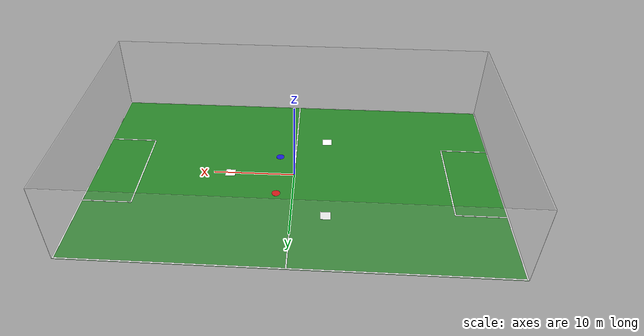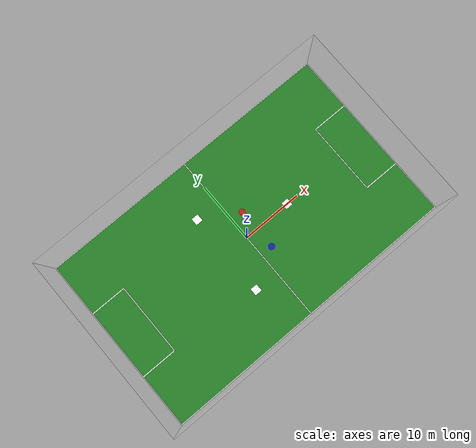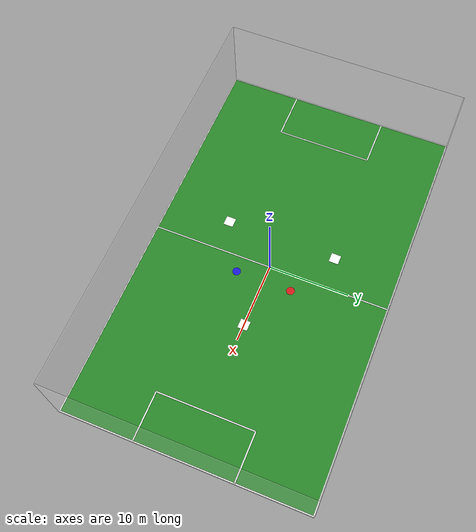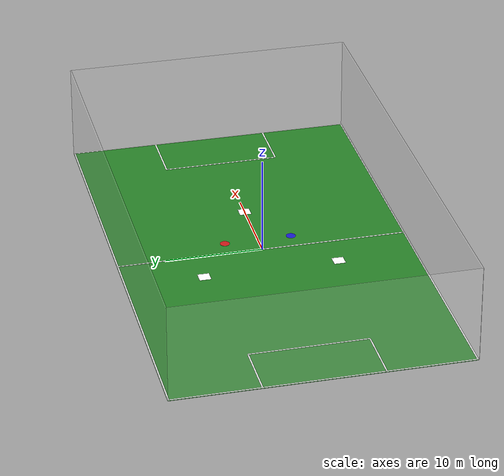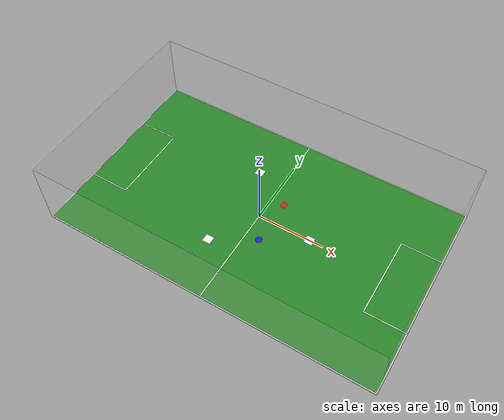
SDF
<?xml version="1.0" ?>
<sdf version="1.9">
  <world name="task1_dynamic_swarm">

    <plugin filename="gz-sim-physics-system" name="gz::sim::systems::Physics"></plugin>
    <plugin filename="gz-sim-scene-broadcaster-system" name="gz::sim::systems::SceneBroadcaster"></plugin>
    <plugin filename="gz-sim-user-commands-system" name="gz::sim::systems::UserCommands"></plugin>

    <plugin filename="gz-sim-sensors-system" name="gz::sim::systems::Sensors">
      <render_engine>ogre2</render_engine>
    </plugin>
    <plugin filename="gz-sim-imu-system" name="gz::sim::systems::Imu"></plugin>
    <plugin filename="gz-sim-air-pressure-system" name="gz::sim::systems::AirPressure"></plugin>
    <plugin filename="gz-sim-air-speed-system" name="gz::sim::systems::AirSpeed"></plugin>
    <plugin filename="gz-sim-navsat-system" name="gz::sim::systems::NavSat"></plugin>
    <plugin filename="gz-sim-magnetometer-system" name="gz::sim::systems::Magnetometer"></plugin>
    <physics type="ode">
      <max_step_size>0.004</max_step_size>
      <real_time_factor>1.0</real_time_factor>
      <real_time_update_rate>250</real_time_update_rate>
    </physics>
    <gravity>0 0 -9.8</gravity>
    <magnetic_field>6e-06 2.3e-05 -4.2e-05</magnetic_field>
    <atmosphere type="adiabatic"/>

    <spherical_coordinates>
      <surface_model>EARTH_WGS84</surface_model>
      <world_frame_orientation>ENU</world_frame_orientation>
      <latitude_deg>47.397971057728974</latitude_deg>
      <longitude_deg>8.546163739800146</longitude_deg>
      <elevation>0</elevation>
    </spherical_coordinates>

    <scene>
      <ambient>1.0 1.0 1.0 1.0</ambient>
      <background>0.5 0.8 0.95 1</background>
      <shadows>false</shadows>
    </scene>

    <light type="directional" name="sun">
      <cast_shadows>false</cast_shadows>
      <pose>0 0 20 0 0 0</pose>
      <diffuse>1.0 1.0 1.0 1</diffuse>
      <specular>0.5 0.5 0.5 1</specular>
      <direction>0 0 -1</direction>
    </light>

    <model name="football_field">
      <static>true</static>
      <link name="link">

        <collision name="collision">
          <geometry><plane><normal>0 0 1</normal><size>50 30</size></plane></geometry>
        </collision>
        <visual name="field_visual">
          <geometry><plane><normal>0 0 1</normal><size>50 30</size></plane></geometry>
          <material>
            <ambient>0.15 0.5 0.15 1</ambient>
            <diffuse>0.15 0.5 0.15 1</diffuse>
            <specular>0.1 0.1 0.1 1</specular>
          </material>
        </visual>

        <visual name="line_center">
          <pose>0 0 0.01 0 0 0</pose>
          <geometry><box><size>0.15 30 0.01</size></box></geometry>
          <material><ambient>1 1 1 1</ambient><diffuse>1 1 1 1</diffuse></material>
        </visual>

        <visual name="line_top">
          <pose>0 14.925 0.01 0 0 0</pose>
          <geometry><box><size>50 0.15 0.01</size></box></geometry>
          <material><ambient>1 1 1 1</ambient><diffuse>1 1 1 1</diffuse></material>
        </visual>
        <visual name="line_bottom">
          <pose>0 -14.925 0.01 0 0 0</pose>
          <geometry><box><size>50 0.15 0.01</size></box></geometry>
          <material><ambient>1 1 1 1</ambient><diffuse>1 1 1 1</diffuse></material>
        </visual>
        <visual name="line_left">
          <pose>-24.925 0 0.01 0 0 0</pose>
          <geometry><box><size>0.15 30 0.01</size></box></geometry>
          <material><ambient>1 1 1 1</ambient><diffuse>1 1 1 1</diffuse></material>
        </visual>
        <visual name="line_right">
          <pose>24.925 0 0.01 0 0 0</pose>
          <geometry><box><size>0.15 30 0.01</size></box></geometry>
          <material><ambient>1 1 1 1</ambient><diffuse>1 1 1 1</diffuse></material>
        </visual>

        <visual name="pen_left_front">
          <pose>-19 0 0.01 0 0 0</pose>
          <geometry><box><size>0.15 12 0.01</size></box></geometry>
          <material><ambient>1 1 1 1</ambient><diffuse>1 1 1 1</diffuse></material>
        </visual>
        <visual name="pen_left_top">
          <pose>-22 6 0.01 0 0 0</pose>
          <geometry><box><size>6 0.15 0.01</size></box></geometry>
          <material><ambient>1 1 1 1</ambient><diffuse>1 1 1 1</diffuse></material>
        </visual>
        <visual name="pen_left_bottom">
          <pose>-22 -6 0.01 0 0 0</pose>
          <geometry><box><size>6 0.15 0.01</size></box></geometry>
          <material><ambient>1 1 1 1</ambient><diffuse>1 1 1 1</diffuse></material>
        </visual>

        <visual name="pen_right_front">
          <pose>19 0 0.01 0 0 0</pose>
          <geometry><box><size>0.15 12 0.01</size></box></geometry>
          <material><ambient>1 1 1 1</ambient><diffuse>1 1 1 1</diffuse></material>
        </visual>
        <visual name="pen_right_top">
          <pose>22 6 0.01 0 0 0</pose>
          <geometry><box><size>6 0.15 0.01</size></box></geometry>
          <material><ambient>1 1 1 1</ambient><diffuse>1 1 1 1</diffuse></material>
        </visual>
        <visual name="pen_right_bottom">
          <pose>22 -6 0.01 0 0 0</pose>
          <geometry><box><size>6 0.15 0.01</size></box></geometry>
          <material><ambient>1 1 1 1</ambient><diffuse>1 1 1 1</diffuse></material>
        </visual>
      </link>
    </model>

    <model name="wall_left">
      <static>true</static>
      <pose>0 15 5 0 0 0</pose>
      <link name="link">
        <collision name="collision"><geometry><box><size>50 0.1 10</size></box></geometry></collision>
        <visual name="visual">
          <geometry><box><size>50 0.1 10</size></box></geometry>
          <material><ambient>1 1 1 0.1</ambient><diffuse>1 1 1 0.1</diffuse></material>
          <transparency>0.8</transparency>
        </visual>
      </link>
    </model>

    <model name="wall_right">
      <static>true</static>
      <pose>0 -15 5 0 0 0</pose>
      <link name="link">
        <collision name="collision"><geometry><box><size>50 0.1 10</size></box></geometry></collision>
        <visual name="visual">
          <geometry><box><size>50 0.1 10</size></box></geometry>
          <material><ambient>1 1 1 0.1</ambient><diffuse>1 1 1 0.1</diffuse></material>
          <transparency>0.8</transparency>
        </visual>
      </link>
    </model>

    <model name="wall_front">
      <static>true</static>
      <pose>25 0 5 0 0 0</pose>
      <link name="link">
        <collision name="collision"><geometry><box><size>0.1 30 10</size></box></geometry></collision>
        <visual name="visual">
          <geometry><box><size>0.1 30 10</size></box></geometry>
          <material><ambient>1 1 1 0.1</ambient><diffuse>1 1 1 0.1</diffuse></material>
          <transparency>0.8</transparency>
        </visual>
      </link>
    </model>

    <model name="wall_back">
      <static>true</static>
      <pose>-25 0 5 0 0 0</pose>
      <link name="link">
        <collision name="collision"><geometry><box><size>0.1 30 10</size></box></geometry></collision>
        <visual name="visual">
          <geometry><box><size>0.1 30 10</size></box></geometry>
          <material><ambient>1 1 1 0.1</ambient><diffuse>1 1 1 0.1</diffuse></material>
          <transparency>0.8</transparency>
        </visual>
      </link>
    </model>

    <model name="QR1">
      <static>true</static>
      <pose>8.00 0.00 0.02 0 0 0</pose>
      <link name="link">
        <visual name="visual">
          <geometry><box><size>1.2 1.2 0.01</size></box></geometry>
          <material>
            <ambient>1 1 1 1</ambient>
            <diffuse>1 1 1 1</diffuse>
            <pbr>
              <metal>
                <albedo_map>model://qr_codes/materials/textures/qr_model_1.png</albedo_map>
                <roughness>1.0</roughness>
                <metalness>0.0</metalness>
              </metal>
            </pbr>
          </material>
        </visual>
      </link>
    </model>

    <model name="QR2">
      <static>true</static>
      <pose>-4.00 6.93 0.02 0 0 0</pose>
      <link name="link">
        <visual name="visual">
          <geometry><box><size>1.2 1.2 0.01</size></box></geometry>
          <material>
            <ambient>1 1 1 1</ambient>
            <diffuse>1 1 1 1</diffuse>
            <pbr>
              <metal>
                <albedo_map>model://qr_codes/materials/textures/qr_model_2.png</albedo_map>
                <roughness>1.0</roughness>
                <metalness>0.0</metalness>
              </metal>
            </pbr>
          </material>
        </visual>
      </link>
    </model>

    <model name="QR3">
      <static>true</static>
      <pose>-4.00 -6.93 0.02 0 0 0</pose>
      <link name="link">
        <visual name="visual">
          <geometry><box><size>1.2 1.2 0.01</size></box></geometry>
          <material>
            <ambient>1 1 1 1</ambient>
            <diffuse>1 1 1 1</diffuse>
            <pbr>
              <metal>
                <albedo_map>model://qr_codes/materials/textures/qr_model_3.png</albedo_map>
                <roughness>1.0</roughness>
                <metalness>0.0</metalness>
              </metal>
            </pbr>
          </material>
        </visual>
      </link>
    </model>

    <model name="landing_pad_red">
      <static>true</static>
      <pose>2.00 3.465 0.02 0 0 0</pose>
      <link name="link">
        <visual name="visual">
          <geometry><cylinder><radius>0.5</radius><length>0.01</length></cylinder></geometry>
          <material><ambient>0.8 0.1 0.1 1</ambient><diffuse>0.8 0.1 0.1 1</diffuse></material>
        </visual>
      </link>
    </model>

    <model name="landing_pad_blue">
      <static>true</static>
      <pose>2.00 -3.465 0.02 0 0 0</pose>
      <link name="link">
        <visual name="visual">
          <geometry><cylinder><radius>0.5</radius><length>0.01</length></cylinder></geometry>
          <material><ambient>0.1 0.1 0.8 1</ambient><diffuse>0.1 0.1 0.8 1</diffuse></material>
        </visual>
      </link>
    </model>

  </world>
</sdf>
